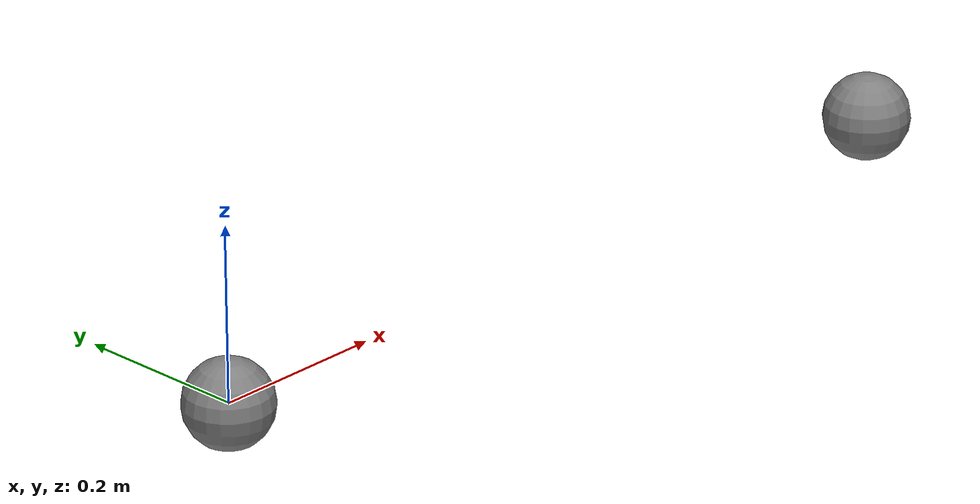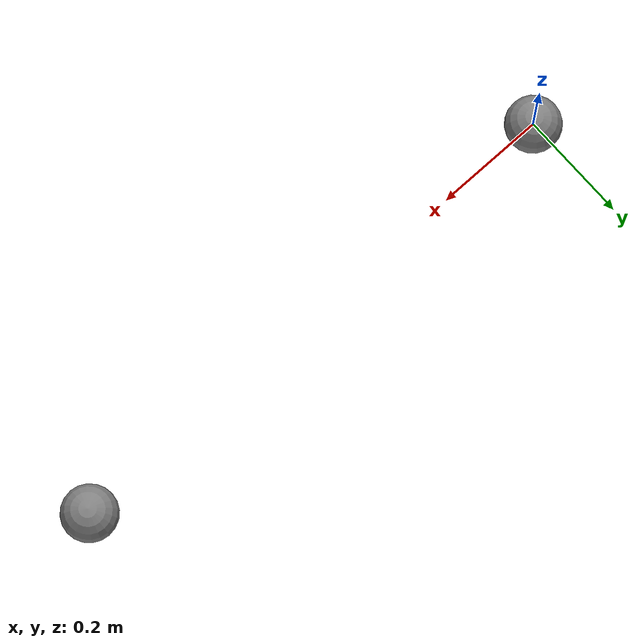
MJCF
<mujoco model="t39">
            <compiler inertiafromgeom="false"/>
            <option gravity="0 0 0"/>
            <worldbody>
                <body name="bRef" pos="0 0 0">
                    <inertial pos="0.1 0 0" mass="1" fullinertia="0.01 0.02 0.03 0.005 0 0"/>
                    <joint name="j1" type="hinge" axis="0 0 1"/>
                    <geom type="sphere" size="0.05" mass="0.001"/>
                </body>
                <body name="B" pos="1 0 0">
                    <joint type="free"/>
                    <geom type="sphere" size="0.05" mass="1"/>
                </body>
            </worldbody>
            <sensor>
                <framequat objtype="xbody" objname="B" reftype="body" refname="bRef"/>
                <framequat objtype="xbody" objname="B" reftype="xbody" refname="bRef"/>
            </sensor>
        </mujoco>
